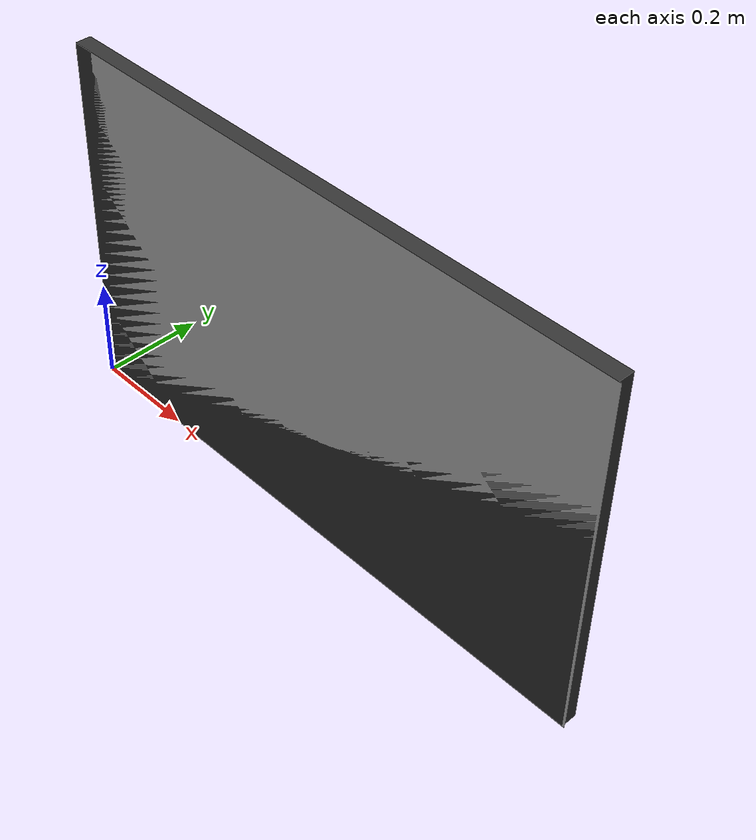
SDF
<?xml version='1.0'?>
<sdf version='1.6'>
  <model name='tv'>
    <pose frame=''>0 0 0 0 -0 0</pose>

    <link name='link'>
       <visual name='visual'>
        <geometry>
          <mesh>
            <uri>model://tv/model.dae</uri>
          </mesh>
        </geometry>
     <material>
        </material>
        <cast_shadows>1</cast_shadows>
        <transparency>0</transparency>
      </visual>
      <collision name='collision'>
        <laser_retro>0</laser_retro>
        <max_contacts>10</max_contacts>
        <geometry>
          <mesh>
            <uri>model://tv/model.dae</uri>
          </mesh>
        </geometry>
      </collision>
    </link>

    <static>1</static>
    <allow_auto_disable>1</allow_auto_disable>
  </model>
</sdf>
